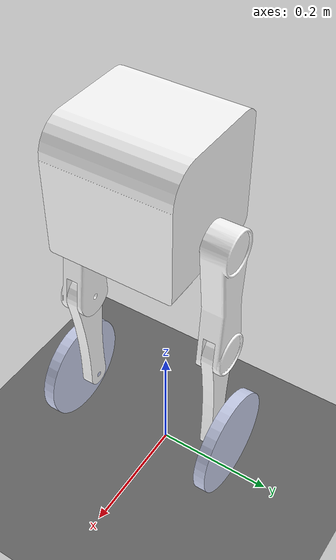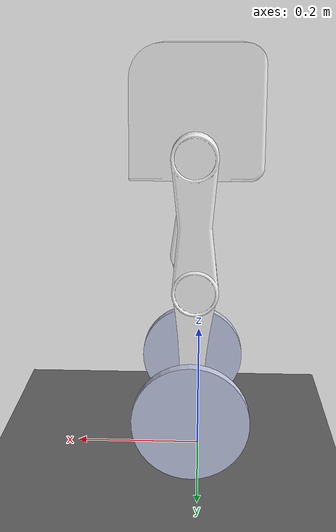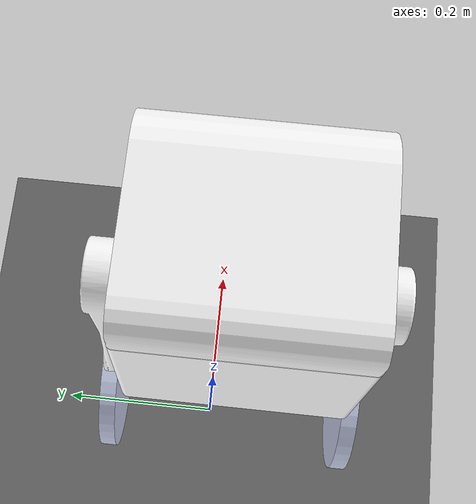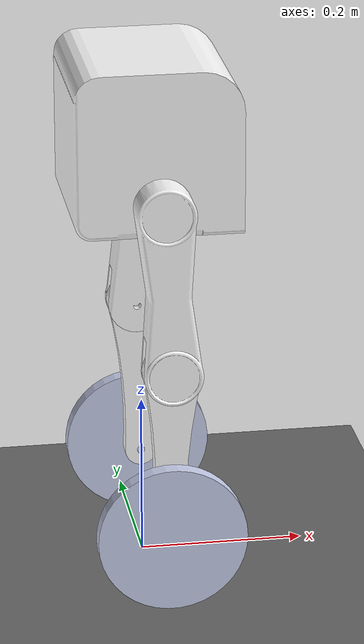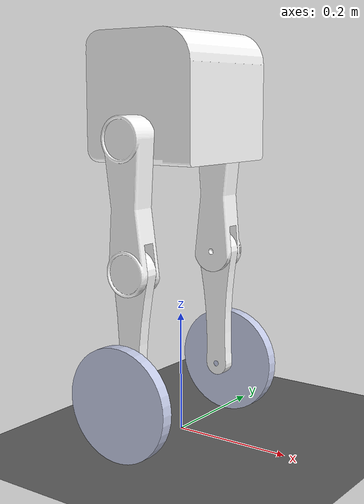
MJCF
<mujoco model="Bipedal">
  <option iterations="50" timestep="0.001" solver="PGS" gravity="0 0 -9.81" />

  <compiler angle="radian"  eulerseq="zyx" autolimits="true" />

  <default>
    <joint limited="true" damping="0.01" armature="0.01" frictionloss="0.01" />
    <geom condim="3" contype="1" conaffinity="15" friction="1.8 0.05 0.001" solref="0.02 1" solimp="0.9 0.95 0.001" />
    <position ctrllimited="true" />
    <equality solref="0.001 2" />
    <default class="visualgeom">
      <geom material="visualgeom" condim="1" contype="0" conaffinity="0" />
    </default>
  </default>

  <asset>
    <mesh name="base_link" content_type="model/stl" file="base_link.STL" />
    <mesh name="left_hip_link" content_type="model/stl" file="left_hip_link.STL" />
    <mesh name="left_knee_link" content_type="model/stl" file="left_knee_link.STL" />
    <mesh name="right_hip_link" content_type="model/stl" file="right_hip_link.STL" />
    <mesh name="right_knee_link" content_type="model/stl" file="right_knee_link.STL" />
    <mesh name="left_wheel_link" content_type="model/stl" file="left_wheel_link.STL" />
    <mesh name="right_wheel_link" content_type="model/stl" file="right_wheel_link.STL" />
    <texture name="texplane" type="2d" builtin="checker" rgb1=".0 .0 .0" rgb2=".8 .8 .8" width="100" height="100" />
    <material name="matplane" reflectance="0." texture="texplane" texrepeat="1 1" texuniform="true" />
    <material name="visualgeom" rgba="0.5 0.9 0.2 1" />
  </asset>

  <worldbody>
    <light directional="true" diffuse="0.4 0.4 0.4" specular="0.1 0.1 0.1" pos="0 0 5.0" dir="0 0 -1" castshadow="false" />
    <light directional="true" diffuse="0.6 0.6 0.6" specular="0.2 0.2 0.2" pos="0 0 4" dir="0 0 -1" />
    <geom name="ground" type="plane" pos="0 0 0" size="100 100 0.001" quat="1 0 0 0" material="matplane" condim="3" conaffinity="15" />
    <camera name="fixed" pos="0 -3.0 0.9730745173996977" xyaxes="1 0 0 0 0 1" />
    <camera name="track" mode="trackcom" pos="0 -3.0 0.9730745173996977" xyaxes="1 0 0 0 0 1" />
    <body name="root" pos="0 0 0.547307451739969775" quat="1 0 0 0">
      <freejoint name="root" />
      <inertial  pos="0.01 -0.0196003228135452 -0.0227358081145863" mass="2.58680345236989" fullinertia="0.0215162702470085 0.02233115289391 0.0214719602558426 -5.17133997903683e-06 -4.56150022793563e-06 2.30329361555432e-05"/>
      <site name="imu" size="0.01" pos="0 0 0" />
      <geom type="mesh" rgba="1 1 1 1" mesh="base_link" contype="1" conaffinity="0" density="0" group="1" class="visualgeom" />
      <geom type="mesh" rgba="1 1 1 1" mesh="base_link" />
      <body name="left_hip_link" pos="0.00888 0.07579 -0.053421" quat="0.00385111 0.707095 0.707098 0.00385112">
        <inertial pos="0.0221476 -0.00180782 0.0832383" quat="0.999941 0.0108585 0.000319679 9.90337e-06" mass="0.548021" diaginertia="0.00300532 0.00292396 0.000248069" />
        <joint name="left_hip" pos="0 0 0" axis="-1 0 0" range="-1.57 1.57" actuatorfrcrange="-8 8" damping="0.56"/>
        <geom type="mesh" rgba="1 1 1 1" mesh="left_hip_link" contype="1" conaffinity="0" density="0" group="1" class="visualgeom" />
        <geom type="mesh" rgba="1 1 1 1" mesh="left_hip_link" />
        <body name="left_knee_link" pos="0.011886 -0.0043428 0.19995" quat="0.99984 0.017892 0 0">
          <inertial pos="0.01 0.00405816 0.0780025" quat="0.999683 -0.0251816 0 0" mass="0.235606" diaginertia="0.00125058 0.00120796 5.83331e-05" />
          <joint name="left_knee" pos="0 0 0" axis="-1 0 0" range="-2.51 2.51" actuatorfrcrange="-4 4" damping="0.56" />
          <geom type="mesh" rgba="1 1 1 1" mesh="left_knee_link" contype="1" conaffinity="0" density="0" group="1" class="visualgeom" />
          <geom type="mesh" rgba="1 1 1 1" mesh="left_knee_link" />
          <body name="left_wheel_link" pos="0 0.0099672 0.19975" quat="0.849056 0.528302 0 0">
            <inertial pos="0.0398848 0 0" mass="0.511294" diaginertia="0.00206123 0.00104922 0.00104922" />
            <joint name="left_wheel" pos="0 0 0" axis="1 0 0" actuatorfrcrange="-2 2" limited="true" range="-1000000 1000000" damping="0.12"/>
            <geom type="mesh" rgba="0.792157 0.819608 0.933333 1" mesh="left_wheel_link" contype="1" conaffinity="0" density="0" group="1" class="visualgeom" />
            <geom type="mesh" rgba="0.792157 0.819608 0.933333 1" mesh="left_wheel_link" />
          </body>
        </body>
      </body>
      <body name="right_hip_link" pos="0.00888 -0.12044 -0.053421" quat="0.0134669 -0.706977 0.70698 -0.013467">
        <inertial pos="0.0221476 5.51885e-08 0.0832579" quat="1 7.78778e-07 0.000319768 6.4318e-06" mass="0.548021" diaginertia="0.00300532 0.00292396 0.000248069" />
        <joint name="right_hip" pos="0 0 0" axis="1 0 0" range="-1.57 1.57" actuatorfrcrange="-8 8" damping="0.56"/>
        <geom type="mesh" rgba="1 1 1 1" mesh="right_hip_link" contype="1" conaffinity="0" density="0" group="1" class="visualgeom" />
        <geom type="mesh" rgba="1 1 1 1" mesh="right_hip_link" />
        <body name="right_knee_link" pos="0.011886 0 0.2" quat="-3.67311e-06 -2.59051e-08 0.00705244 0.999975">
          <inertial pos="-0.01 -0.00358343 0.0780258" quat="0.999718 0.0237501 0 0" mass="0.235606" diaginertia="0.00125058 0.00120796 5.83331e-05" />
          <joint name="right_knee" pos="0 0 0" axis="-1 0 0" range="-2.51 2.51" actuatorfrcrange="-4 4" damping="0.56" />
          <geom type="mesh" rgba="1 1 1 1" mesh="right_knee_link" contype="1" conaffinity="0" density="0" group="1" class="visualgeom" />
          <geom type="mesh" rgba="1 1 1 1" mesh="right_knee_link" />
          <body name="right_wheel_link" pos="0 -0.0095996 0.19977" quat="-3.58152e-06 8.15558e-07 -0.222029 0.97504">
            <inertial pos="0.0398848 0 0" mass="0.511294" diaginertia="0.00206123 0.00104922 0.00104922" />
            <joint name="right_wheel" pos="0 0 0" axis="-1 0 0" actuatorfrcrange="-2 2" limited="true" range="-1000000 1000000" damping="0.12" />
            <geom type="mesh" rgba="0.792157 0.819608 0.933333 1" mesh="right_wheel_link" contype="1" conaffinity="0" density="0" group="1" class="visualgeom" />
            <geom type="mesh" rgba="0.792157 0.819608 0.933333 1" mesh="right_wheel_link" />
          </body>
        </body>
      </body>
    </body>
  </worldbody>

  <actuator>
    <position name="left_hip" joint="left_hip" ctrllimited="true" kp="5" ctrlrange="-8 8" gear="1" />
    <position name="left_knee" joint="left_knee" ctrllimited="true" kp="5"  ctrlrange="-4 4" gear="1" />
    <velocity name="left_wheel" joint="left_wheel" ctrllimited="true"   ctrlrange="-2 2" gear="1" />
    <position name="right_hip" joint="right_hip" ctrllimited="true" kp="5"  ctrlrange="-8 8" gear="1" />
    <position name="right_knee" joint="right_knee" ctrllimited="true" kp="5"  ctrlrange="-4 4" gear="1" />
    <velocity name="right_wheel" joint="right_wheel" ctrllimited="true" ctrlrange="-2 2" gear="1" />
  </actuator>

  <sensor>
    <actuatorpos name="left_hip_p" actuator="left_hip" />
    <actuatorvel name="left_hip_v" actuator="left_hip" />
    <actuatorfrc name="left_hip_f" actuator="left_hip" noise="0.001" />
    <actuatorpos name="left_knee_p" actuator="left_knee" />
    <actuatorvel name="left_knee_v" actuator="left_knee" />
    <actuatorfrc name="left_knee_f" actuator="left_knee" noise="0.001" />
    <actuatorpos name="left_wheel_p" actuator="left_wheel" />
    <actuatorvel name="left_wheel_v" actuator="left_wheel" />
    <actuatorfrc name="left_wheel_f" actuator="left_wheel" noise="0.001" />
    <actuatorpos name="right_hip_p" actuator="right_hip" />
    <actuatorvel name="right_hip_v" actuator="right_hip" />
    <actuatorfrc name="right_hip_f" actuator="right_hip" noise="0.001" />
    <actuatorpos name="right_knee_p" actuator="right_knee" />
    <actuatorvel name="right_knee_v" actuator="right_knee" />
    <actuatorfrc name="right_knee_f" actuator="right_knee" noise="0.001" />
    <actuatorpos name="right_wheel_p" actuator="right_wheel" />
    <actuatorvel name="right_wheel_v" actuator="right_wheel" />
    <actuatorfrc name="right_wheel_f" actuator="right_wheel" noise="0.001" />

    <framequat name="orientation" objtype="site" noise="0.001" objname="imu" />
    <gyro name="angular_velocity" site="imu"  noise="0.005" cutoff="34.9"/>
    <velocimeter name="linear_velocity" site="imu" noise="0.005" cutoff="34.9"/>
  </sensor>
</mujoco>
